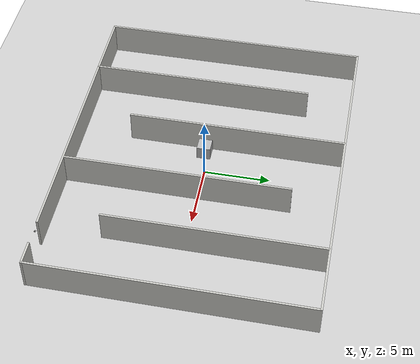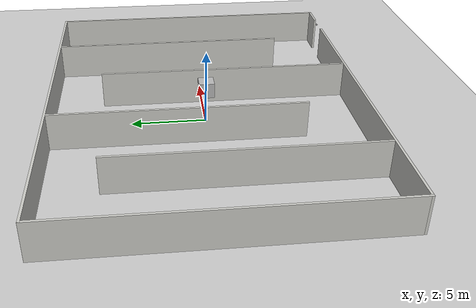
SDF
<sdf version="1.6">
 <world name="default">
  <light name="sun" type="directional">
   <pose>0 0 10 0 -0 0</pose>
   <diffuse>0.8 0.8 0.8 1</diffuse>
   <specular>0.2 0.2 0.2 1</specular>
   <attenuation>
    <range>1000</range>
    <constant>0.9</constant>
    <linear>0.01</linear>
    <quadratic>0.001</quadratic>
   </attenuation>
   <direction>-0.5 0.1 -0.9</direction>
  </light>
  <model name="ground_plane">
   <static>1</static>
   <link name="link">
    <collision name="collision">
     <geometry><plane><normal>0 0 1</normal><size>100 100</size></plane></geometry>
     <surface>
      <contact><collide_bitmask>65535</collide_bitmask></contact>
      <friction><ode><mu>100</mu><mu2>50</mu2></ode></friction>
     </surface>
    </collision>
    <visual name="visual">
     <cast_shadows>0</cast_shadows>
     <geometry><plane><normal>0 0 1</normal><size>100 100</size></plane></geometry>
     <material>
      <script><uri>file://media/materials/scripts/gazebo.material</uri><name>Gazebo/Grey</name></script>
     </material>
    </visual>
   </link>
  </model>
  <gravity>0 0 -9.8</gravity>
  <magnetic_field>6e-06 2.3e-05 -4.2e-05</magnetic_field>
  <atmosphere type="adiabatic"/>
  <physics name="default_physics" default="0" type="ode">
   <max_step_size>0.001</max_step_size>
   <real_time_factor>1</real_time_factor>
   <real_time_update_rate>1000</real_time_update_rate>
  </physics>
  <scene><ambient>0.4 0.4 0.4 1</ambient><background>0.7 0.7 0.7 1</background><shadows>1</shadows></scene>
  <audio><device>default</device></audio>
  <spherical_coordinates>
   <surface_model>EARTH_WGS84</surface_model>
   <latitude_deg>0</latitude_deg>
   <longitude_deg>0</longitude_deg>
   <elevation>0</elevation>
   <heading_deg>0</heading_deg>
  </spherical_coordinates>
  <model name="unit_box">
   <pose>0 0 2.5 0 -0 0</pose>
   <link name="link"><visual name="visual"><geometry><box><size>1 1 1</size></box></geometry></visual></link>
  </model>
  <model name="wall_camera">
   <static>true</static>
   <pose>10 -10 2.5 0 0.7 -1.57</pose>
   <link name="wall_camera_link">
    <visual name="visual"><geometry><box><size>0.1 0.1 0.1</size></box></geometry></visual>
    <sensor name="wall_camera" type="camera">
     <camera>
      <horizontal_fov>1.047</horizontal_fov>
      <image><width>1920</width><height>1080</height></image>
      <clip><near>0.1</near><far>100</far></clip>
     </camera>
     <always_on>1</always_on>
     <update_rate>30</update_rate>
     <plugin name="camera_en_ros" filename="libgazebo_ros_camera.so">
      <alwaysOn>true</alwaysOn>
      <updateRate>0.0</updateRate>
      <cameraName>wall_camera</cameraName>
      <imageTopicName>image_raw_wall</imageTopicName>
      <cameraInfoTopicName>camera_info</cameraInfoTopicName>
      <frameName>camera_link</frameName>
      <hackBaseline>0.07</hackBaseline>
      <distortionK1>0.0</distortionK1>
      <distortionK2>0.0</distortionK2>
      <distortionK3>0.0</distortionK3>
      <distortionT1>0.0</distortionT1>
      <distortionT2>0.0</distortionT2>
     </plugin>
    </sensor>
   </link>
  </model>
  <model name="Model-2">
   <pose>0.069 0.039 0 0 -0 0</pose>
   <link name="Wall_10">
    <collision name="Wall_10_Collision">
     <geometry><box><size>25.5 0.15 2.5</size></box></geometry>
     <pose>0 0 1.25 0 -0 0</pose>
    </collision>
    <visual name="Wall_10_Visual">
     <pose>0 0 1.25 0 -0 0</pose>
     <geometry><box><size>25.5 0.15 2.5</size></box></geometry>
     <material>
      <script><uri>file://media/materials/scripts/gazebo.material</uri><name>Gazebo/CeilingTiled</name></script>
      <ambient>1 1 1 1</ambient>
     </material>
     <meta><layer>0</layer></meta>
    </visual>
    <pose>-0 10.175 0 0 -0 0</pose>
   </link>
   <link name="Wall_11">
    <collision name="Wall_11_Collision">
     <geometry><box><size>20.5 0.15 2.5</size></box></geometry>
     <pose>0 0 1.25 0 -0 0</pose>
    </collision>
    <visual name="Wall_11_Visual">
     <pose>0 0 1.25 0 -0 0</pose>
     <geometry><box><size>20.5 0.15 2.5</size></box></geometry>
     <material>
      <script><uri>file://media/materials/scripts/gazebo.material</uri><name>Gazebo/CeilingTiled</name></script>
      <ambient>1 1 1 1</ambient>
     </material>
     <meta><layer>0</layer></meta>
    </visual>
    <pose>12.675 0 0 0 -0 -1.5708</pose>
   </link>
   <link name="Wall_12">
    <pose>-0 -10.175 0 0 -0 3.14159</pose>
    <visual name="Wall_12_Visual_0">
     <pose>-11.8545 0 1.25 0 -0 0</pose>
     <geometry><box><size>1.79099 0.15 2.5</size></box></geometry>
     <material>
      <script><uri>file://media/materials/scripts/gazebo.material</uri><name>Gazebo/CeilingTiled</name></script>
      <ambient>1 1 1 1</ambient>
     </material>
     <meta><layer>0</layer></meta>
    </visual>
    <collision name="Wall_12_Collision_0">
     <geometry><box><size>1.79099 0.15 2.5</size></box></geometry>
     <pose>-11.8545 0 1.25 0 -0 0</pose>
    </collision>
    <visual name="Wall_12_Visual_1">
     <pose>1.82049 0 1.25 0 -0 0</pose>
     <geometry><box><size>21.859 0.15 2.5</size></box></geometry>
     <material>
      <script><uri>file://media/materials/scripts/gazebo.material</uri><name>Gazebo/CeilingTiled</name></script>
      <ambient>1 1 1 1</ambient>
     </material>
     <meta><layer>0</layer></meta>
    </visual>
    <collision name="Wall_12_Collision_1">
     <geometry><box><size>21.859 0.15 2.5</size></box></geometry>
     <pose>1.82049 0 1.25 0 -0 0</pose>
    </collision>
   </link>
   <link name="Wall_13">
    <collision name="Wall_13_Collision">
     <geometry><box><size>20.5 0.15 2.5</size></box></geometry>
     <pose>0 0 1.25 0 -0 0</pose>
    </collision>
    <visual name="Wall_13_Visual">
     <pose>0 0 1.25 0 -0 0</pose>
     <geometry><box><size>20.5 0.15 2.5</size></box></geometry>
     <material>
      <script><uri>file://media/materials/scripts/gazebo.material</uri><name>Gazebo/CeilingTiled</name></script>
      <ambient>1 1 1 1</ambient>
     </material>
     <meta><layer>0</layer></meta>
    </visual>
    <pose>-12.675 0 0 0 -0 1.5708</pose>
   </link>
   <link name="Wall_30">
    <collision name="Wall_30_Collision">
     <geometry><box><size>17 0.15 2.5</size></box></geometry>
     <pose>0 0 1.25 0 -0 0</pose>
    </collision>
    <visual name="Wall_30_Visual">
     <pose>0 0 1.25 0 -0 0</pose>
     <geometry><box><size>17 0.15 2.5</size></box></geometry>
     <material>
      <script><uri>file://media/materials/scripts/gazebo.material</uri><name>Gazebo/CeilingTiled</name></script>
      <ambient>1 1 1 1</ambient>
     </material>
     <meta><layer>0</layer></meta>
    </visual>
    <pose>-7.548 -1.718 0 0 -0 1.5708</pose>
   </link>
   <link name="Wall_32">
    <collision name="Wall_32_Collision">
     <geometry><box><size>16.5 0.15 2.5</size></box></geometry>
     <pose>0 0 1.25 0 -0 0</pose>
    </collision>
    <visual name="Wall_32_Visual">
     <pose>0 0 1.25 0 -0 0</pose>
     <geometry><box><size>16.5 0.15 2.5</size></box></geometry>
     <material>
      <script><uri>file://media/materials/scripts/gazebo.material</uri><name>Gazebo/CeilingTiled</name></script>
      <ambient>1 1 1 1</ambient>
     </material>
     <meta><layer>0</layer></meta>
    </visual>
    <pose>-2.626 1.90599 0 0 -0 -1.5708</pose>
   </link>
   <link name="Wall_34">
    <collision name="Wall_34_Collision">
     <geometry><box><size>17 0.15 2.5</size></box></geometry>
     <pose>0 0 1.25 0 -0 0</pose>
    </collision>
    <visual name="Wall_34_Visual">
     <pose>0 0 1.25 0 -0 0</pose>
     <geometry><box><size>17 0.15 2.5</size></box></geometry>
     <material>
      <script><uri>file://media/materials/scripts/gazebo.material</uri><name>Gazebo/CeilingTiled</name></script>
      <ambient>1 1 1 1</ambient>
     </material>
     <meta><layer>0</layer></meta>
    </visual>
    <pose>2.671 -1.611 0 0 -0 1.5708</pose>
   </link>
   <link name="Wall_39">
    <collision name="Wall_39_Collision">
     <geometry><box><size>16.25 0.15 2.5</size></box></geometry>
     <pose>0 0 1.25 0 -0 0</pose>
    </collision>
    <visual name="Wall_39_Visual">
     <pose>0 0 1.25 0 -0 0</pose>
     <geometry><box><size>16.25 0.15 2.5</size></box></geometry>
     <material>
      <script><uri>file://media/materials/scripts/gazebo.material</uri><name>Gazebo/CeilingTiled</name></script>
      <ambient>1 1 1 1</ambient>
     </material>
     <meta><layer>0</layer></meta>
    </visual>
    <pose>7.593 2.031 0 0 -0 -1.5708</pose>
   </link>
   <static>1</static>
  </model>
 </world>
</sdf>
